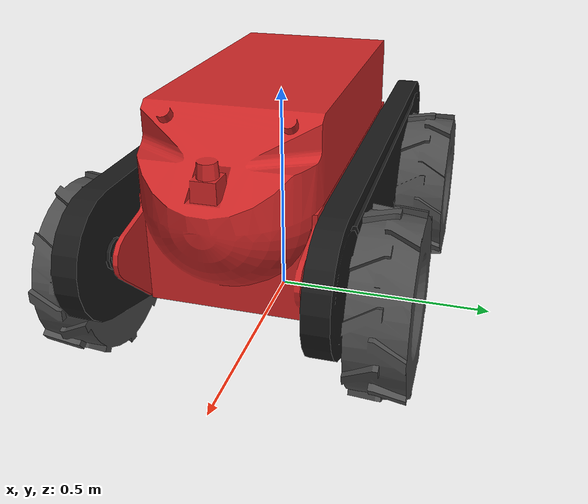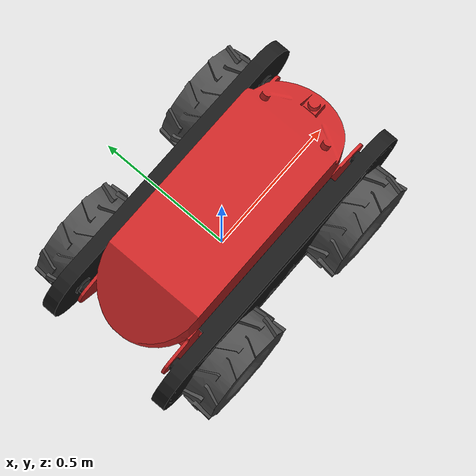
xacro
<?xml version="1.0"?>
<robot name="guardian" xmlns:xacro="http://www.ros.org/wiki/xacro">

	<!-- Imported elements -->

	<!-- First we import all posible elements defined in the urdf.xacro files. All these elements are defined as macro:xacros -->

	<xacro:include filename="$(find guardian_description)/urdf/v9/guardian.urdf.xacro" />
	<xacro:include filename="$(find guardian_description)/urdf/v9/guardian.gazebo.xacro" />

	<!-- Robots Elements -->

	<!-- Here we create the robot elements using the xacro:macros imported at the beggining of this file -->
	<!-- Guardian wheels-->
	<xacro:guardian_wheels/>
	<xacro:gazebo_guardian_skid_steering broadcastOdomTF="1" namespace="/guardian"/>
	<!-- Gazebo ros control pluggins -->
	<xacro:ros_control namespace="/guardian"/>

</robot>

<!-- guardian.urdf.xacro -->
<robot name="guardian" xmlns:xacro="http://www.ros.org/wiki/xacro">

  <!-- Import all Gazebo-customization elements, including Gazebo colors -->
  <xacro:include filename="$(find guardian_description)/urdf/v9/guardian.gazebo.xacro" />
   <!-- Robot mechanical and motor parameters -->
  <xacro:property name="PI" value="3.1415926535897931"/>
  <xacro:property name="wheel_offset_x" value="0.300" />    <!-- x,y,z in base_footprint CS -->
  <xacro:property name="wheel_offset_y" value="0.265" />
  <xacro:property name="wheel_offset_z" value="0.0" />
  <xacro:property name="wheel_joint_damping" value="0.0" />
  <xacro:property name="wheel_joint_friction" value="0.0" />

  <xacro:property name="wheel_joint_effort_limit" value="200.0" />
  <xacro:property name="wheel_joint_velocity_limit" value="200.0" />
  <xacro:property name="wheel_mechanical_reduction" value="1.0" />

  <xacro:macro name="guardian_wheels">

	  <!-- BASE FOOTPRINT -->
	  <!-- base_footprint is a fictitious link(frame) that is on the ground right below base_link origin,
				 navigation stack depends on this frame -->
	  <link name="base_footprint">
		  <visual>
			  <origin xyz="0 0 0" rpy="0 0 0" />
			  <geometry>
				 <box size="0.001 0.001 0.001" />
			  </geometry>
		  </visual>

		  <collision>
			  <origin xyz="0 0 0" rpy="0 0 0" />
			  <geometry>
				<box size="0.001 0.001 0.001" />
			 </geometry>
		 </collision>
	  </link>

	  <joint name="base_footprint_joint" type="fixed">
		 <!--NB: While you would think this would make it go up, it is oddly reversed.
		  This moves the joint to 0,0,0 where we want it for rviz, etc. -->
		 <!-- origin xyz="0 0 0.130" rpy="0 0 0" / -->
		 <origin xyz="0 0 0.18" rpy="0 0 0" />
		 <parent link="base_footprint"/>
		 <child link="base_link" />
	  </joint>

	  <!-- BASE_LINK (RED) -->
	  <link name="base_link">
		<inertial>
		  <mass value="95.0" />
		  <origin xyz="0 0 0" />
		  <inertia  ixx="3.737" ixy="0.008"  ixz="-0.144"  iyy="8.311"  iyz="-0.004"  izz="8.893" />
		</inertial>
		<visual>
		   <origin xyz="0 0 0" rpy="0 0 0" />
		   <geometry>
		 <mesh filename="package://guardian_description/meshes/chassis/v8/chassisV8.dae"/>
		   </geometry>
		</visual>
		<collision>
		   <origin xyz="0 0 0" rpy="0 0 0 " />
		   <geometry>
			 <mesh filename="package://guardian_description/meshes/chassis/v8/chassisV8.dae"/>
		   </geometry>
		</collision>
	  </link>

	  <!-- LEFT TRACK (BLACK) -->
	  <link name="left_track">
		<inertial>
		  <mass value="1.250" />
		  <origin xyz="0 0 0" />
		  <inertia  ixx="0.0109375" ixy="0.0"  ixz="0.0"  iyy="0.021125"  iyz="0.0"  izz="0.0109375" />
		</inertial>
		<visual>
			<origin xyz="0 0 0" rpy="0 0 0" />
			<geometry>
		 <mesh filename="package://guardian_description/meshes/others/v5/trackV5_l.dae"/>
			</geometry>
		<material name="black">
			<color rgba="0.1 0.1 0.1 1"/>
			</material>
		</visual>
		<collision>
		   <origin xyz="0 0 0" rpy="0 0 0" />
		   <geometry>
			 <mesh filename="package://guardian_description/meshes/others/v5/trackV5_l.dae"/>
		   </geometry>
		</collision>
	  </link>

	  <joint name="joint_left_track" type="fixed">
		<parent link="base_link"/>
		<child link="left_track"/>
		<origin xyz="0.0 0.0 0.0" rpy="0 0 0" />
	  </joint>

	  <!-- RIGHT TRACK (BLACK) -->
	  <link name="right_track">
		<inertial>
		  <mass value="1.250" />
		  <origin xyz="0 0 0" />
		  <inertia  ixx="0.0109375" ixy="0.0"  ixz="0.0"  iyy="0.021125"  iyz="0.0"  izz="0.0109375" />
		</inertial>
		<visual>
		   <origin xyz="0 0 0" rpy="0 0 0" />
		   <geometry>
		 <mesh filename="package://guardian_description/meshes/others/v5/trackV5_l.dae"/>
		   </geometry>
		<material name="black">
			<color rgba="0.1 0.1 0.1 1"/>
			</material>
		</visual>
		<collision>
		   <origin xyz="0 0 0" rpy="0 0 0" />
		   <geometry>
			 <mesh filename="package://guardian_description/meshes/others/v5/trackV5_l.dae"/>
		   </geometry>
		</collision>
	  </link>

	  <joint name="joint_right_track" type="fixed">
		<parent link="base_link"/>
		<child link="right_track"/>
		<origin xyz="0.0 0.0 0.0" rpy="0 0 3.1415926535" />
	  </joint>

	  <!-- BACK LEFT WHEEL (GREY) -->
	  <link name="back_left_wheel">
		<inertial>
		  <mass value="4.5" />
		  <origin xyz="0 0 0" rpy="0 0 3.1416"/>
		  <inertia  ixx="0.059" ixy="0.0"  ixz="0.0"  iyy="0.055"  iyz="0.0"  izz="0.059" />
		</inertial>
		<visual>
		   <origin xyz="0 0 0" rpy="0 0 3.1416" />
		   <geometry>
		 <mesh filename="package://guardian_description/meshes/wheel.dae"/>
		   </geometry>
		<material name="grey">
			<color rgba="0.3 0.3 0.3 1"/>
			</material>
		</visual>
		<collision>
		   <origin xyz="0 0 0" rpy="0 0 3.1416" />
		   <geometry>
			 <mesh filename="package://guardian_description/meshes/wheel.dae"/>
		   </geometry>
		</collision>
	  </link>

	  <joint name="joint_back_left_wheel" type="continuous">
		<parent link="base_link"/>
		<child link="back_left_wheel"/>
		<origin xyz="-${wheel_offset_x} ${wheel_offset_y} 0" rpy="0 0 0" />
		<axis xyz="0 1 0" rpy="0 0 0" />
		<limit effort="${wheel_joint_effort_limit}" velocity="${wheel_joint_velocity_limit}"/>
		<joint_properties damping="${wheel_joint_damping}" friction="{wheel_joint_friction}"/>
	  </joint>

	  <transmission name="joint_blw_trans">
		 <type>transmission_interface/SimpleTransmission</type>
		 <joint name="joint_back_left_wheel" />
		 <actuator name="joint_blw_motor">
			<hardwareInterface>EffortJointInterface</hardwareInterface>
			<mechanicalReduction>${wheel_mechanical_reduction}</mechanicalReduction>
		 </actuator>
	  </transmission>

	  <!-- BACK RIGHT WHEEL (BLACK) -->
	  <link name="back_right_wheel">
		<inertial>
		  <mass value="4.5" />
		  <origin xyz="0 0 0" rpy="0 0 0"/>
		  <inertia  ixx="0.059" ixy="0.0"  ixz="0.0"  iyy="0.055"  iyz="0.0"  izz="0.059" />
		</inertial>

		<visual>
		   <origin xyz="0 0 0" rpy="0 0 0" />
		   <geometry>
			 <mesh filename="package://guardian_description/meshes/wheel.dae"/>
		   </geometry>
		<material name="gray">
			<color rgba="0.3 0.3 0.3 1"/>
			</material>
		</visual>
		<collision>
		   <origin xyz="0 0 0" rpy="0 0 0" />
		   <geometry>
			 <mesh filename="package://guardian_description/meshes/wheel.dae"/>
		   </geometry>
		</collision>
	  </link>

	  <joint name="joint_back_right_wheel" type="continuous">
		<parent link="base_link"/>
		<child link="back_right_wheel"/>
		<origin xyz="-${wheel_offset_x} -${wheel_offset_y} 0" rpy="0 0 0" />
		<axis xyz="0 1 0" rpy="0 0 0" />
		<limit effort="${wheel_joint_effort_limit}" velocity="${wheel_joint_velocity_limit}"/>
		<joint_properties damping="${wheel_joint_damping}" friction="{wheel_joint_friction}"/>
	  </joint>

	  <transmission name="joint_brw_trans">
		<type>transmission_interface/SimpleTransmission</type>
		<joint name="joint_back_right_wheel" />
		<actuator name="joint_brw_motor">
		   <hardwareInterface>EffortJointInterface</hardwareInterface>
		   <mechanicalReduction>${wheel_mechanical_reduction}</mechanicalReduction>
		</actuator>
	  </transmission>

	  <!-- FRONT LEFT WHEEL (GREY) -->
	  <link name="front_left_wheel">
		<inertial>
		  <mass value="4.5" />
		  <origin xyz="0 0 0" rpy="0 0 3.1416"/>
		  <inertia  ixx="0.059" ixy="0.0"  ixz="0.0"  iyy="0.055"  iyz="0.0"  izz="0.059" />
		</inertial>

		<visual>
		   <origin xyz="0 0 0" rpy="0 0 3.1416" />
		   <geometry>
			 <mesh filename="package://guardian_description/meshes/wheel.dae"/>
		   </geometry>
		<material name="grey">
			<color rgba="0.3 0.3 0.3 1"/>
			</material>
		</visual>
		<collision>
		   <origin xyz="0 0 0" rpy="0 0 3.1416" />
		   <geometry>
			 <mesh filename="package://guardian_description/meshes/wheel.dae"/>
		   </geometry>
		</collision>
	  </link>

	  <joint name="joint_front_left_wheel" type="continuous">
		<parent link="base_link"/>
		<child link="front_left_wheel"/>
		<origin xyz="${wheel_offset_x} ${wheel_offset_y} 0" rpy="0 0 0" />
		<axis xyz="0 1 0" rpy="0 0 0" />
		<limit effort="${wheel_joint_effort_limit}" velocity="${wheel_joint_velocity_limit}"/>
		<joint_properties damping="${wheel_joint_damping}" friction="{wheel_joint_friction}"/>
	  </joint>

	  <transmission name="joint_flw_trans">
		 <type>transmission_interface/SimpleTransmission</type>
		 <joint name="joint_front_left_wheel" />
		 <actuator name="joint_flw_motor">
		   <hardwareInterface>EffortJointInterface</hardwareInterface>
		   <mechanicalReduction>${wheel_mechanical_reduction}</mechanicalReduction>
		 </actuator>
	  </transmission>

	  <!-- FRONT RIGHT WHEEL (GREY) -->
	  <link name="front_right_wheel">
		<inertial>
		  <mass value="4.5" />
		  <origin xyz="0 0 0" rpy="0 0 0"/>
		  <inertia  ixx="0.059" ixy="0.0"  ixz="0.0"  iyy="0.055"  iyz="0.0"  izz="0.059" />
		</inertial>

		<visual>
		   <origin xyz="0 0 0" rpy="0 0 0" />
		   <geometry>
			 <mesh filename="package://guardian_description/meshes/wheel.dae"/>
		   </geometry>
		<material name="grey">
			<color rgba="0.3 0.3 0.3 1"/>
			</material>
		</visual>
		<collision>
		   <origin xyz="0 0 0" rpy="0 0 0" />
		   <geometry>
			 <mesh filename="package://guardian_description/meshes/wheel.dae"/>
		   </geometry>
		</collision>
	  </link>

	  <joint name="joint_front_right_wheel" type="continuous">
		<parent link="base_link"/>
		<child link="front_right_wheel"/>
		<origin xyz="${wheel_offset_x} -${wheel_offset_y} 0" rpy="0 0 0" />
		<axis xyz="0 1 0" rpy="0 0 0" />
		<limit effort="${wheel_joint_effort_limit}" velocity="${wheel_joint_velocity_limit}"/>
		<joint_properties damping="${wheel_joint_damping}" friction="{wheel_joint_friction}"/>
	  </joint>

	  <transmission name="joint_frw_trans">
		 <type>transmission_interface/SimpleTransmission</type>
		 <joint name="joint_front_right_wheel" />
		 <actuator name="joint_frw_motor">
		   <hardwareInterface>EffortJointInterface</hardwareInterface>
		   <mechanicalReduction>${wheel_mechanical_reduction}</mechanicalReduction>
		 </actuator>
	  </transmission>

  </xacro:macro>

</robot>
